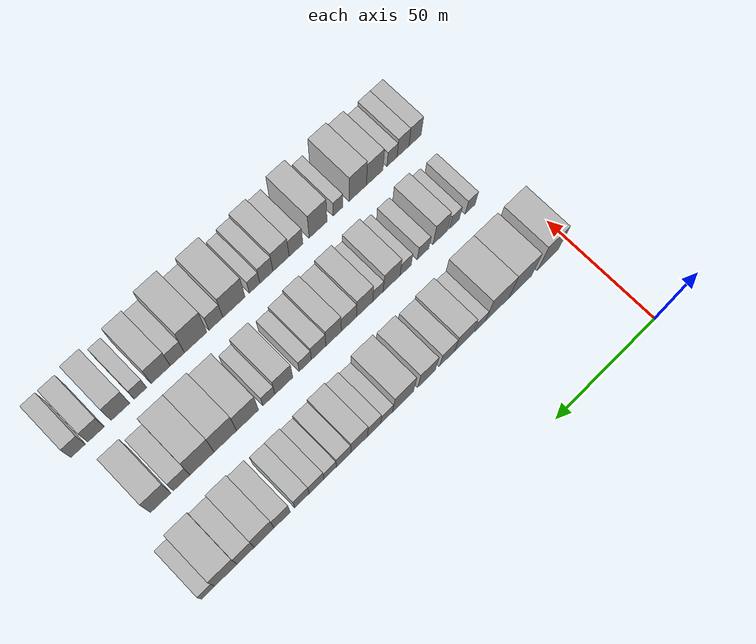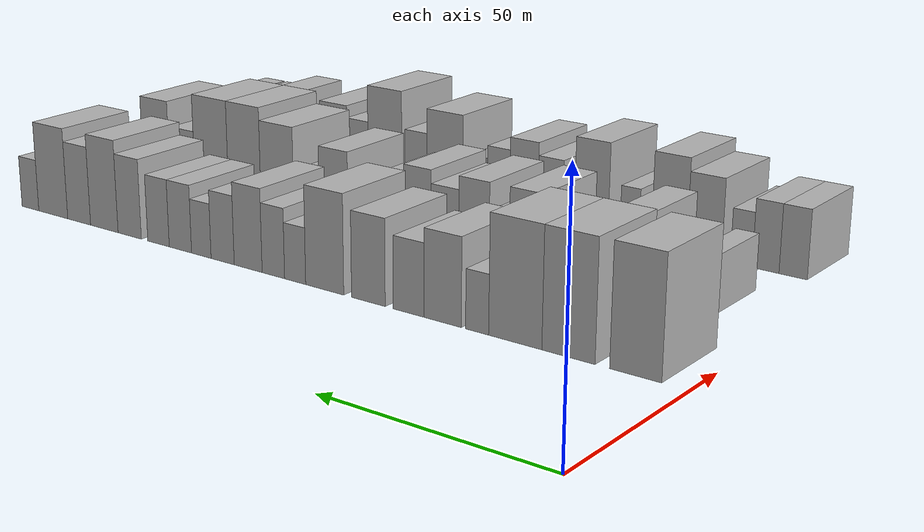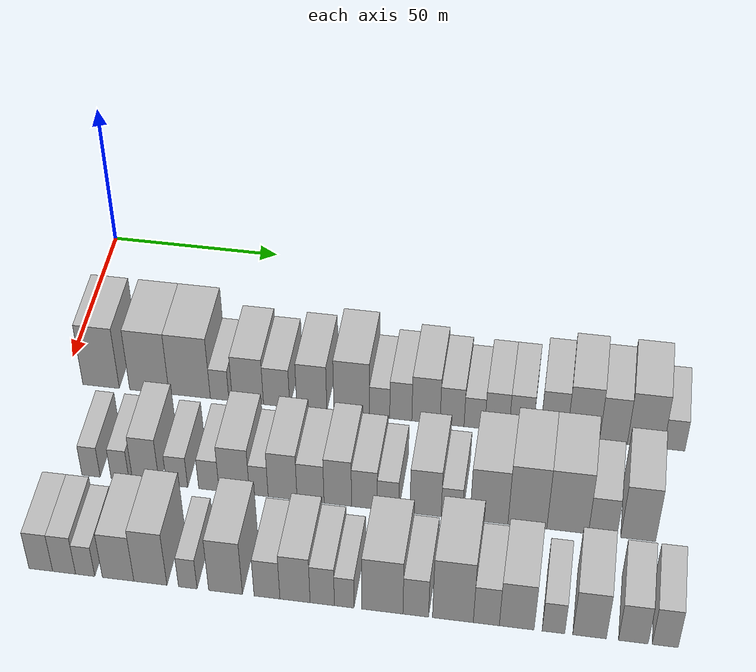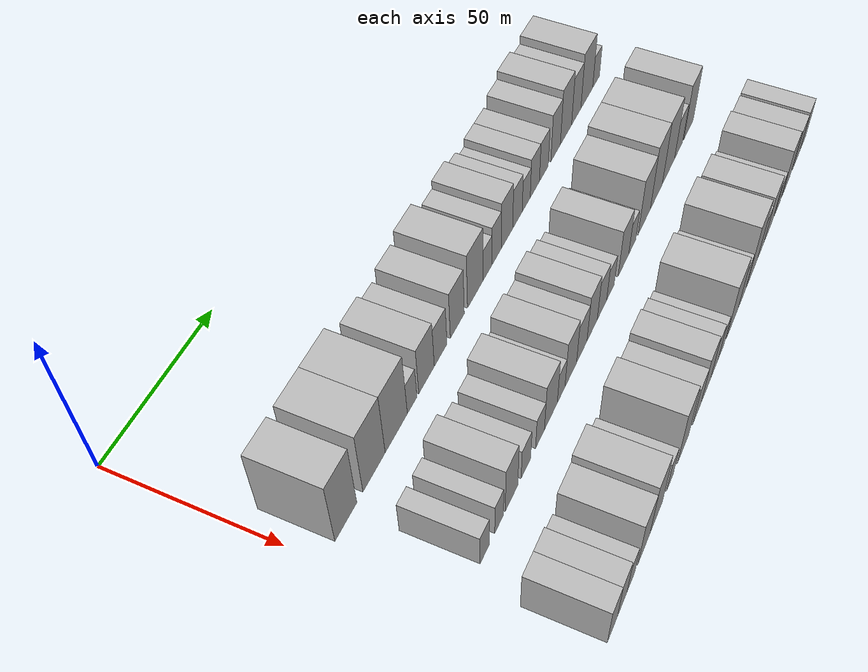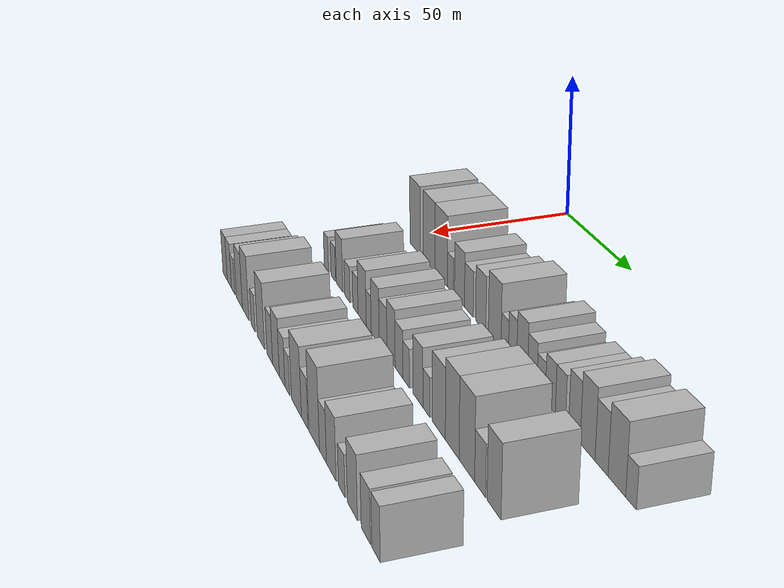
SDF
<sdf version="1.6">
 <world name="default">
  <model name="building_41">
   <static>1</static>
   <pose>50.0000 10.7805 0 0.000000 0.000000 0.000000</pose>
   <link name="link">
    <pose>0 0 12.00 0 0 0</pose>
    <collision name="collision"><geometry><box><size>20.0000 10.5251 24.0000</size></box></geometry></collision>
    <visual name="visual">
     <cast_shadows>0</cast_shadows>
     <geometry><box><size>20.0000 10.5251 24.0000</size></box></geometry>
     <material>
      <script>
       <uri>model://HANNAS_wall/materials/scripts</uri>
       <uri>model://HANNAS_wall/materials/textures</uri>
       <name>vrc/HANNAS_wall</name>
      </script>
     </material>
    </visual>
   </link>
  </model>
  <model name="building_42">
   <static>1</static>
   <pose>50.0000 24.7000 0 0.000000 0.000000 0.000000</pose>
   <link name="link">
    <pose>0 0 12.00 0 0 0</pose>
    <collision name="collision"><geometry><box><size>20.0000 11.3139 24.0000</size></box></geometry></collision>
    <visual name="visual">
     <cast_shadows>0</cast_shadows>
     <geometry><box><size>20.0000 11.3139 24.0000</size></box></geometry>
     <material>
      <script>
       <uri>model://HANNAS_wall/materials/scripts</uri>
       <uri>model://HANNAS_wall/materials/textures</uri>
       <name>vrc/HANNAS_wall</name>
      </script>
     </material>
    </visual>
   </link>
  </model>
  <model name="building_43">
   <static>1</static>
   <pose>50.0000 36.2653 0 0.000000 0.000000 0.000000</pose>
   <link name="link">
    <pose>0 0 12.00 0 0 0</pose>
    <collision name="collision"><geometry><box><size>20.0000 11.8165 24.0000</size></box></geometry></collision>
    <visual name="visual">
     <cast_shadows>0</cast_shadows>
     <geometry><box><size>20.0000 11.8165 24.0000</size></box></geometry>
     <material>
      <script>
       <uri>model://HANNAS_wall/materials/scripts</uri>
       <uri>model://HANNAS_wall/materials/textures</uri>
       <name>vrc/HANNAS_wall</name>
      </script>
     </material>
    </visual>
   </link>
  </model>
  <model name="building_44">
   <static>1</static>
   <pose>50.0000 44.8143 0 0.000000 0.000000 0.000000</pose>
   <link name="link">
    <pose>0 0 6.00 0 0 0</pose>
    <collision name="collision"><geometry><box><size>20.0000 5.2817 12.0000</size></box></geometry></collision>
    <visual name="visual">
     <cast_shadows>0</cast_shadows>
     <geometry><box><size>20.0000 5.2817 12.0000</size></box></geometry>
     <material>
      <script>
       <uri>model://HANNAS_wall/materials/scripts</uri>
       <uri>model://HANNAS_wall/materials/textures</uri>
       <name>vrc/HANNAS_wall</name>
      </script>
     </material>
    </visual>
   </link>
  </model>
  <model name="building_45">
   <static>1</static>
   <pose>50.0000 52.8690 0 0.000000 0.000000 0.000000</pose>
   <link name="link">
    <pose>0 0 9.00 0 0 0</pose>
    <collision name="collision"><geometry><box><size>20.0000 8.8278 18.0000</size></box></geometry></collision>
    <visual name="visual">
     <cast_shadows>0</cast_shadows>
     <geometry><box><size>20.0000 8.8278 18.0000</size></box></geometry>
     <material>
      <script>
       <uri>model://HANNAS_wall/materials/scripts</uri>
       <uri>model://HANNAS_wall/materials/textures</uri>
       <name>vrc/HANNAS_wall</name>
      </script>
     </material>
    </visual>
   </link>
  </model>
  <model name="building_46">
   <static>1</static>
   <pose>50.0000 60.9933 0 0.000000 0.000000 0.000000</pose>
   <link name="link">
    <pose>0 0 7.50 0 0 0</pose>
    <collision name="collision"><geometry><box><size>20.0000 7.4207 15.0000</size></box></geometry></collision>
    <visual name="visual">
     <cast_shadows>0</cast_shadows>
     <geometry><box><size>20.0000 7.4207 15.0000</size></box></geometry>
     <material>
      <script>
       <uri>model://HANNAS_wall/materials/scripts</uri>
       <uri>model://HANNAS_wall/materials/textures</uri>
       <name>vrc/HANNAS_wall</name>
      </script>
     </material>
    </visual>
   </link>
  </model>
  <model name="building_47">
   <static>1</static>
   <pose>50.0000 70.9440 0 0.000000 0.000000 0.000000</pose>
   <link name="link">
    <pose>0 0 9.00 0 0 0</pose>
    <collision name="collision"><geometry><box><size>20.0000 8.4807 18.0000</size></box></geometry></collision>
    <visual name="visual">
     <cast_shadows>0</cast_shadows>
     <geometry><box><size>20.0000 8.4807 18.0000</size></box></geometry>
     <material>
      <script>
       <uri>model://HANNAS_wall/materials/scripts</uri>
       <uri>model://HANNAS_wall/materials/textures</uri>
       <name>vrc/HANNAS_wall</name>
      </script>
     </material>
    </visual>
   </link>
  </model>
  <model name="building_48">
   <static>1</static>
   <pose>50.0000 82.1688 0 0.000000 0.000000 0.000000</pose>
   <link name="link">
    <pose>0 0 10.50 0 0 0</pose>
    <collision name="collision"><geometry><box><size>20.0000 9.9690 21.0000</size></box></geometry></collision>
    <visual name="visual">
     <cast_shadows>0</cast_shadows>
     <geometry><box><size>20.0000 9.9690 21.0000</size></box></geometry>
     <material>
      <script>
       <uri>model://HANNAS_wall/materials/scripts</uri>
       <uri>model://HANNAS_wall/materials/textures</uri>
       <name>vrc/HANNAS_wall</name>
      </script>
     </material>
    </visual>
   </link>
  </model>
  <model name="building_49">
   <static>1</static>
   <pose>50.0000 89.9884 0 0.000000 0.000000 0.000000</pose>
   <link name="link">
    <pose>0 0 6.00 0 0 0</pose>
    <collision name="collision"><geometry><box><size>20.0000 5.6702 12.0000</size></box></geometry></collision>
    <visual name="visual">
     <cast_shadows>0</cast_shadows>
     <geometry><box><size>20.0000 5.6702 12.0000</size></box></geometry>
     <material>
      <script>
       <uri>model://HANNAS_wall/materials/scripts</uri>
       <uri>model://HANNAS_wall/materials/textures</uri>
       <name>vrc/HANNAS_wall</name>
      </script>
     </material>
    </visual>
   </link>
  </model>
  <model name="building_50">
   <static>1</static>
   <pose>50.0000 95.9091 0 0.000000 0.000000 0.000000</pose>
   <link name="link">
    <pose>0 0 7.50 0 0 0</pose>
    <collision name="collision"><geometry><box><size>20.0000 6.1710 15.0000</size></box></geometry></collision>
    <visual name="visual">
     <cast_shadows>0</cast_shadows>
     <geometry><box><size>20.0000 6.1710 15.0000</size></box></geometry>
     <material>
      <script>
       <uri>model://HANNAS_wall/materials/scripts</uri>
       <uri>model://HANNAS_wall/materials/textures</uri>
       <name>vrc/HANNAS_wall</name>
      </script>
     </material>
    </visual>
   </link>
  </model>
  <model name="building_51">
   <static>1</static>
   <pose>50.0000 102.9194 0 0.000000 0.000000 0.000000</pose>
   <link name="link">
    <pose>0 0 9.00 0 0 0</pose>
    <collision name="collision"><geometry><box><size>20.0000 7.8496 18.0000</size></box></geometry></collision>
    <visual name="visual">
     <cast_shadows>0</cast_shadows>
     <geometry><box><size>20.0000 7.8496 18.0000</size></box></geometry>
     <material>
      <script>
       <uri>model://HANNAS_wall/materials/scripts</uri>
       <uri>model://HANNAS_wall/materials/textures</uri>
       <name>vrc/HANNAS_wall</name>
      </script>
     </material>
    </visual>
   </link>
  </model>
  <model name="building_52">
   <static>1</static>
   <pose>50.0000 110.1753 0 0.000000 0.000000 0.000000</pose>
   <link name="link">
    <pose>0 0 7.50 0 0 0</pose>
    <collision name="collision"><geometry><box><size>20.0000 6.6623 15.0000</size></box></geometry></collision>
    <visual name="visual">
     <cast_shadows>0</cast_shadows>
     <geometry><box><size>20.0000 6.6623 15.0000</size></box></geometry>
     <material>
      <script>
       <uri>model://HANNAS_wall/materials/scripts</uri>
       <uri>model://HANNAS_wall/materials/textures</uri>
       <name>vrc/HANNAS_wall</name>
      </script>
     </material>
    </visual>
   </link>
  </model>
  <model name="building_53">
   <static>1</static>
   <pose>50.0000 116.3749 0 0.000000 0.000000 0.000000</pose>
   <link name="link">
    <pose>0 0 6.00 0 0 0</pose>
    <collision name="collision"><geometry><box><size>20.0000 5.7369 12.0000</size></box></geometry></collision>
    <visual name="visual">
     <cast_shadows>0</cast_shadows>
     <geometry><box><size>20.0000 5.7369 12.0000</size></box></geometry>
     <material>
      <script>
       <uri>model://HANNAS_wall/materials/scripts</uri>
       <uri>model://HANNAS_wall/materials/textures</uri>
       <name>vrc/HANNAS_wall</name>
      </script>
     </material>
    </visual>
   </link>
  </model>
  <model name="building_54">
   <static>1</static>
   <pose>50.0000 122.5907 0 0.000000 0.000000 0.000000</pose>
   <link name="link">
    <pose>0 0 7.50 0 0 0</pose>
    <collision name="collision"><geometry><box><size>20.0000 6.6947 15.0000</size></box></geometry></collision>
    <visual name="visual">
     <cast_shadows>0</cast_shadows>
     <geometry><box><size>20.0000 6.6947 15.0000</size></box></geometry>
     <material>
      <script>
       <uri>model://HANNAS_wall/materials/scripts</uri>
       <uri>model://HANNAS_wall/materials/textures</uri>
       <name>vrc/HANNAS_wall</name>
      </script>
     </material>
    </visual>
   </link>
  </model>
  <model name="building_55">
   <static>1</static>
   <pose>50.0000 129.2250 0 0.000000 0.000000 0.000000</pose>
   <link name="link">
    <pose>0 0 7.50 0 0 0</pose>
    <collision name="collision"><geometry><box><size>20.0000 6.5739 15.0000</size></box></geometry></collision>
    <visual name="visual">
     <cast_shadows>0</cast_shadows>
     <geometry><box><size>20.0000 6.5739 15.0000</size></box></geometry>
     <material>
      <script>
       <uri>model://HANNAS_wall/materials/scripts</uri>
       <uri>model://HANNAS_wall/materials/textures</uri>
       <name>vrc/HANNAS_wall</name>
      </script>
     </material>
    </visual>
   </link>
  </model>
  <model name="building_56">
   <static>1</static>
   <pose>50.0000 138.1787 0 0.000000 0.000000 0.000000</pose>
   <link name="link">
    <pose>0 0 9.00 0 0 0</pose>
    <collision name="collision"><geometry><box><size>20.0000 7.3336 18.0000</size></box></geometry></collision>
    <visual name="visual">
     <cast_shadows>0</cast_shadows>
     <geometry><box><size>20.0000 7.3336 18.0000</size></box></geometry>
     <material>
      <script>
       <uri>model://HANNAS_wall/materials/scripts</uri>
       <uri>model://HANNAS_wall/materials/textures</uri>
       <name>vrc/HANNAS_wall</name>
      </script>
     </material>
    </visual>
   </link>
  </model>
  <model name="building_57">
   <static>1</static>
   <pose>50.0000 146.2890 0 0.000000 0.000000 0.000000</pose>
   <link name="link">
    <pose>0 0 10.50 0 0 0</pose>
    <collision name="collision"><geometry><box><size>20.0000 8.8871 21.0000</size></box></geometry></collision>
    <visual name="visual">
     <cast_shadows>0</cast_shadows>
     <geometry><box><size>20.0000 8.8871 21.0000</size></box></geometry>
     <material>
      <script>
       <uri>model://HANNAS_wall/materials/scripts</uri>
       <uri>model://HANNAS_wall/materials/textures</uri>
       <name>vrc/HANNAS_wall</name>
      </script>
     </material>
    </visual>
   </link>
  </model>
  <model name="building_58">
   <static>1</static>
   <pose>50.0000 154.5236 0 0.000000 0.000000 0.000000</pose>
   <link name="link">
    <pose>0 0 9.00 0 0 0</pose>
    <collision name="collision"><geometry><box><size>20.0000 7.5820 18.0000</size></box></geometry></collision>
    <visual name="visual">
     <cast_shadows>0</cast_shadows>
     <geometry><box><size>20.0000 7.5820 18.0000</size></box></geometry>
     <material>
      <script>
       <uri>model://HANNAS_wall/materials/scripts</uri>
       <uri>model://HANNAS_wall/materials/textures</uri>
       <name>vrc/HANNAS_wall</name>
      </script>
     </material>
    </visual>
   </link>
  </model>
  <model name="building_59">
   <static>1</static>
   <pose>50.0000 163.2395 0 0.000000 0.000000 0.000000</pose>
   <link name="link">
    <pose>0 0 10.50 0 0 0</pose>
    <collision name="collision"><geometry><box><size>20.0000 9.8498 21.0000</size></box></geometry></collision>
    <visual name="visual">
     <cast_shadows>0</cast_shadows>
     <geometry><box><size>20.0000 9.8498 21.0000</size></box></geometry>
     <material>
      <script>
       <uri>model://HANNAS_wall/materials/scripts</uri>
       <uri>model://HANNAS_wall/materials/textures</uri>
       <name>vrc/HANNAS_wall</name>
      </script>
     </material>
    </visual>
   </link>
  </model>
  <model name="building_60">
   <static>1</static>
   <pose>50.0000 171.0696 0 0.000000 0.000000 0.000000</pose>
   <link name="link">
    <pose>0 0 6.00 0 0 0</pose>
    <collision name="collision"><geometry><box><size>20.0000 5.8104 12.0000</size></box></geometry></collision>
    <visual name="visual">
     <cast_shadows>0</cast_shadows>
     <geometry><box><size>20.0000 5.8104 12.0000</size></box></geometry>
     <material>
      <script>
       <uri>model://HANNAS_wall/materials/scripts</uri>
       <uri>model://HANNAS_wall/materials/textures</uri>
       <name>vrc/HANNAS_wall</name>
      </script>
     </material>
    </visual>
   </link>
  </model>
  <model name="building_124">
   <static>1</static>
   <pose>82.0000 16.2486 0 0.000000 0.000000 0.000000</pose>
   <link name="link">
    <pose>0 0 6.00 0 0 0</pose>
    <collision name="collision"><geometry><box><size>20.0000 5.0421 12.0000</size></box></geometry></collision>
    <visual name="visual">
     <cast_shadows>0</cast_shadows>
     <geometry><box><size>20.0000 5.0421 12.0000</size></box></geometry>
     <material>
      <script>
       <uri>model://HANNAS_wall/materials/scripts</uri>
       <uri>model://HANNAS_wall/materials/textures</uri>
       <name>vrc/HANNAS_wall</name>
      </script>
     </material>
    </visual>
   </link>
  </model>
  <model name="building_125">
   <static>1</static>
   <pose>82.0000 24.2443 0 0.000000 0.000000 0.000000</pose>
   <link name="link">
    <pose>0 0 6.00 0 0 0</pose>
    <collision name="collision"><geometry><box><size>20.0000 4.9494 12.0000</size></box></geometry></collision>
    <visual name="visual">
     <cast_shadows>0</cast_shadows>
     <geometry><box><size>20.0000 4.9494 12.0000</size></box></geometry>
     <material>
      <script>
       <uri>model://HANNAS_wall/materials/scripts</uri>
       <uri>model://HANNAS_wall/materials/textures</uri>
       <name>vrc/HANNAS_wall</name>
      </script>
     </material>
    </visual>
   </link>
  </model>
  <model name="building_126">
   <static>1</static>
   <pose>82.0000 31.3654 0 0.000000 0.000000 0.000000</pose>
   <link name="link">
    <pose>0 0 9.00 0 0 0</pose>
    <collision name="collision"><geometry><box><size>20.0000 7.2928 18.0000</size></box></geometry></collision>
    <visual name="visual">
     <cast_shadows>0</cast_shadows>
     <geometry><box><size>20.0000 7.2928 18.0000</size></box></geometry>
     <material>
      <script>
       <uri>model://HANNAS_wall/materials/scripts</uri>
       <uri>model://HANNAS_wall/materials/textures</uri>
       <name>vrc/HANNAS_wall</name>
      </script>
     </material>
    </visual>
   </link>
  </model>
  <model name="building_127">
   <static>1</static>
   <pose>82.0000 39.8989 0 0.000000 0.000000 0.000000</pose>
   <link name="link">
    <pose>0 0 6.00 0 0 0</pose>
    <collision name="collision"><geometry><box><size>20.0000 5.7742 12.0000</size></box></geometry></collision>
    <visual name="visual">
     <cast_shadows>0</cast_shadows>
     <geometry><box><size>20.0000 5.7742 12.0000</size></box></geometry>
     <material>
      <script>
       <uri>model://HANNAS_wall/materials/scripts</uri>
       <uri>model://HANNAS_wall/materials/textures</uri>
       <name>vrc/HANNAS_wall</name>
      </script>
     </material>
    </visual>
   </link>
  </model>
  <model name="building_128">
   <static>1</static>
   <pose>82.0000 48.5575 0 0.000000 0.000000 0.000000</pose>
   <link name="link">
    <pose>0 0 6.00 0 0 0</pose>
    <collision name="collision"><geometry><box><size>20.0000 5.5428 12.0000</size></box></geometry></collision>
    <visual name="visual">
     <cast_shadows>0</cast_shadows>
     <geometry><box><size>20.0000 5.5428 12.0000</size></box></geometry>
     <material>
      <script>
       <uri>model://HANNAS_wall/materials/scripts</uri>
       <uri>model://HANNAS_wall/materials/textures</uri>
       <name>vrc/HANNAS_wall</name>
      </script>
     </material>
    </visual>
   </link>
  </model>
  <model name="building_129">
   <static>1</static>
   <pose>82.0000 55.4622 0 0.000000 0.000000 0.000000</pose>
   <link name="link">
    <pose>0 0 9.00 0 0 0</pose>
    <collision name="collision"><geometry><box><size>20.0000 8.2667 18.0000</size></box></geometry></collision>
    <visual name="visual">
     <cast_shadows>0</cast_shadows>
     <geometry><box><size>20.0000 8.2667 18.0000</size></box></geometry>
     <material>
      <script>
       <uri>model://HANNAS_wall/materials/scripts</uri>
       <uri>model://HANNAS_wall/materials/textures</uri>
       <name>vrc/HANNAS_wall</name>
      </script>
     </material>
    </visual>
   </link>
  </model>
  <model name="building_130">
   <static>1</static>
   <pose>82.0000 62.1192 0 0.000000 0.000000 0.000000</pose>
   <link name="link">
    <pose>0 0 6.00 0 0 0</pose>
    <collision name="collision"><geometry><box><size>20.0000 5.0472 12.0000</size></box></geometry></collision>
    <visual name="visual">
     <cast_shadows>0</cast_shadows>
     <geometry><box><size>20.0000 5.0472 12.0000</size></box></geometry>
     <material>
      <script>
       <uri>model://HANNAS_wall/materials/scripts</uri>
       <uri>model://HANNAS_wall/materials/textures</uri>
       <name>vrc/HANNAS_wall</name>
      </script>
     </material>
    </visual>
   </link>
  </model>
  <model name="building_131">
   <static>1</static>
   <pose>82.0000 68.5437 0 0.000000 0.000000 0.000000</pose>
   <link name="link">
    <pose>0 0 9.00 0 0 0</pose>
    <collision name="collision"><geometry><box><size>20.0000 7.8018 18.0000</size></box></geometry></collision>
    <visual name="visual">
     <cast_shadows>0</cast_shadows>
     <geometry><box><size>20.0000 7.8018 18.0000</size></box></geometry>
     <material>
      <script>
       <uri>model://HANNAS_wall/materials/scripts</uri>
       <uri>model://HANNAS_wall/materials/textures</uri>
       <name>vrc/HANNAS_wall</name>
      </script>
     </material>
    </visual>
   </link>
  </model>
  <model name="building_132">
   <static>1</static>
   <pose>82.0000 76.0768 0 0.000000 0.000000 0.000000</pose>
   <link name="link">
    <pose>0 0 7.50 0 0 0</pose>
    <collision name="collision"><geometry><box><size>20.0000 7.2645 15.0000</size></box></geometry></collision>
    <visual name="visual">
     <cast_shadows>0</cast_shadows>
     <geometry><box><size>20.0000 7.2645 15.0000</size></box></geometry>
     <material>
      <script>
       <uri>model://HANNAS_wall/materials/scripts</uri>
       <uri>model://HANNAS_wall/materials/textures</uri>
       <name>vrc/HANNAS_wall</name>
      </script>
     </material>
    </visual>
   </link>
  </model>
  <model name="building_133">
   <static>1</static>
   <pose>82.0000 83.4015 0 0.000000 0.000000 0.000000</pose>
   <link name="link">
    <pose>0 0 9.00 0 0 0</pose>
    <collision name="collision"><geometry><box><size>20.0000 7.3848 18.0000</size></box></geometry></collision>
    <visual name="visual">
     <cast_shadows>0</cast_shadows>
     <geometry><box><size>20.0000 7.3848 18.0000</size></box></geometry>
     <material>
      <script>
       <uri>model://HANNAS_wall/materials/scripts</uri>
       <uri>model://HANNAS_wall/materials/textures</uri>
       <name>vrc/HANNAS_wall</name>
      </script>
     </material>
    </visual>
   </link>
  </model>
  <model name="building_134">
   <static>1</static>
   <pose>82.0000 90.5304 0 0.000000 0.000000 0.000000</pose>
   <link name="link">
    <pose>0 0 7.50 0 0 0</pose>
    <collision name="collision"><geometry><box><size>20.0000 6.8730 15.0000</size></box></geometry></collision>
    <visual name="visual">
     <cast_shadows>0</cast_shadows>
     <geometry><box><size>20.0000 6.8730 15.0000</size></box></geometry>
     <material>
      <script>
       <uri>model://HANNAS_wall/materials/scripts</uri>
       <uri>model://HANNAS_wall/materials/textures</uri>
       <name>vrc/HANNAS_wall</name>
      </script>
     </material>
    </visual>
   </link>
  </model>
  <model name="building_135">
   <static>1</static>
   <pose>82.0000 96.8142 0 0.000000 0.000000 0.000000</pose>
   <link name="link">
    <pose>0 0 6.00 0 0 0</pose>
    <collision name="collision"><geometry><box><size>20.0000 5.6945 12.0000</size></box></geometry></collision>
    <visual name="visual">
     <cast_shadows>0</cast_shadows>
     <geometry><box><size>20.0000 5.6945 12.0000</size></box></geometry>
     <material>
      <script>
       <uri>model://HANNAS_wall/materials/scripts</uri>
       <uri>model://HANNAS_wall/materials/textures</uri>
       <name>vrc/HANNAS_wall</name>
      </script>
     </material>
    </visual>
   </link>
  </model>
  <model name="building_136">
   <static>1</static>
   <pose>82.0000 106.8059 0 0.000000 0.000000 0.000000</pose>
   <link name="link">
    <pose>0 0 9.00 0 0 0</pose>
    <collision name="collision"><geometry><box><size>20.0000 8.2890 18.0000</size></box></geometry></collision>
    <visual name="visual">
     <cast_shadows>0</cast_shadows>
     <geometry><box><size>20.0000 8.2890 18.0000</size></box></geometry>
     <material>
      <script>
       <uri>model://HANNAS_wall/materials/scripts</uri>
       <uri>model://HANNAS_wall/materials/textures</uri>
       <name>vrc/HANNAS_wall</name>
      </script>
     </material>
    </visual>
   </link>
  </model>
  <model name="building_137">
   <static>1</static>
   <pose>82.0000 113.7559 0 0.000000 0.000000 0.000000</pose>
   <link name="link">
    <pose>0 0 6.00 0 0 0</pose>
    <collision name="collision"><geometry><box><size>20.0000 5.6109 12.0000</size></box></geometry></collision>
    <visual name="visual">
     <cast_shadows>0</cast_shadows>
     <geometry><box><size>20.0000 5.6109 12.0000</size></box></geometry>
     <material>
      <script>
       <uri>model://HANNAS_wall/materials/scripts</uri>
       <uri>model://HANNAS_wall/materials/textures</uri>
       <name>vrc/HANNAS_wall</name>
      </script>
     </material>
    </visual>
   </link>
  </model>
  <model name="building_138">
   <static>1</static>
   <pose>82.0000 123.5837 0 0.000000 0.000000 0.000000</pose>
   <link name="link">
    <pose>0 0 10.50 0 0 0</pose>
    <collision name="collision"><geometry><box><size>20.0000 10.0447 21.0000</size></box></geometry></collision>
    <visual name="visual">
     <cast_shadows>0</cast_shadows>
     <geometry><box><size>20.0000 10.0447 21.0000</size></box></geometry>
     <material>
      <script>
       <uri>model://HANNAS_wall/materials/scripts</uri>
       <uri>model://HANNAS_wall/materials/textures</uri>
       <name>vrc/HANNAS_wall</name>
      </script>
     </material>
    </visual>
   </link>
  </model>
  <model name="building_139">
   <static>1</static>
   <pose>82.0000 133.7031 0 0.000000 0.000000 0.000000</pose>
   <link name="link">
    <pose>0 0 12.00 0 0 0</pose>
    <collision name="collision"><geometry><box><size>20.0000 10.1940 24.0000</size></box></geometry></collision>
    <visual name="visual">
     <cast_shadows>0</cast_shadows>
     <geometry><box><size>20.0000 10.1940 24.0000</size></box></geometry>
     <material>
      <script>
       <uri>model://HANNAS_wall/materials/scripts</uri>
       <uri>model://HANNAS_wall/materials/textures</uri>
       <name>vrc/HANNAS_wall</name>
      </script>
     </material>
    </visual>
   </link>
  </model>
  <model name="building_140">
   <static>1</static>
   <pose>82.0000 144.2493 0 0.000000 0.000000 0.000000</pose>
   <link name="link">
    <pose>0 0 12.00 0 0 0</pose>
    <collision name="collision"><geometry><box><size>20.0000 10.8985 24.0000</size></box></geometry></collision>
    <visual name="visual">
     <cast_shadows>0</cast_shadows>
     <geometry><box><size>20.0000 10.8985 24.0000</size></box></geometry>
     <material>
      <script>
       <uri>model://HANNAS_wall/materials/scripts</uri>
       <uri>model://HANNAS_wall/materials/textures</uri>
       <name>vrc/HANNAS_wall</name>
      </script>
     </material>
    </visual>
   </link>
  </model>
  <model name="building_141">
   <static>1</static>
   <pose>82.0000 153.3906 0 0.000000 0.000000 0.000000</pose>
   <link name="link">
    <pose>0 0 7.50 0 0 0</pose>
    <collision name="collision"><geometry><box><size>20.0000 7.3841 15.0000</size></box></geometry></collision>
    <visual name="visual">
     <cast_shadows>0</cast_shadows>
     <geometry><box><size>20.0000 7.3841 15.0000</size></box></geometry>
     <material>
      <script>
       <uri>model://HANNAS_wall/materials/scripts</uri>
       <uri>model://HANNAS_wall/materials/textures</uri>
       <name>vrc/HANNAS_wall</name>
      </script>
     </material>
    </visual>
   </link>
  </model>
  <model name="building_142">
   <static>1</static>
   <pose>82.0000 162.6246 0 0.000000 0.000000 0.000000</pose>
   <link name="link">
    <pose>0 0 10.50 0 0 0</pose>
    <collision name="collision"><geometry><box><size>20.0000 9.0839 21.0000</size></box></geometry></collision>
    <visual name="visual">
     <cast_shadows>0</cast_shadows>
     <geometry><box><size>20.0000 9.0839 21.0000</size></box></geometry>
     <material>
      <script>
       <uri>model://HANNAS_wall/materials/scripts</uri>
       <uri>model://HANNAS_wall/materials/textures</uri>
       <name>vrc/HANNAS_wall</name>
      </script>
     </material>
    </visual>
   </link>
  </model>
  <model name="building_200">
   <static>1</static>
   <pose>114.0000 11.3408 0 0.000000 0.000000 0.000000</pose>
   <link name="link">
    <pose>0 0 7.50 0 0 0</pose>
    <collision name="collision"><geometry><box><size>20.0000 6.2617 15.0000</size></box></geometry></collision>
    <visual name="visual">
     <cast_shadows>0</cast_shadows>
     <geometry><box><size>20.0000 6.2617 15.0000</size></box></geometry>
     <material>
      <script>
       <uri>model://HANNAS_wall/materials/scripts</uri>
       <uri>model://HANNAS_wall/materials/textures</uri>
       <name>vrc/HANNAS_wall</name>
      </script>
     </material>
    </visual>
   </link>
  </model>
  <model name="building_201">
   <static>1</static>
   <pose>114.0000 17.4911 0 0.000000 0.000000 0.000000</pose>
   <link name="link">
    <pose>0 0 7.50 0 0 0</pose>
    <collision name="collision"><geometry><box><size>20.0000 6.0389 15.0000</size></box></geometry></collision>
    <visual name="visual">
     <cast_shadows>0</cast_shadows>
     <geometry><box><size>20.0000 6.0389 15.0000</size></box></geometry>
     <material>
      <script>
       <uri>model://HANNAS_wall/materials/scripts</uri>
       <uri>model://HANNAS_wall/materials/textures</uri>
       <name>vrc/HANNAS_wall</name>
      </script>
     </material>
    </visual>
   </link>
  </model>
  <model name="building_202">
   <static>1</static>
   <pose>114.0000 23.0313 0 0.000000 0.000000 0.000000</pose>
   <link name="link">
    <pose>0 0 6.00 0 0 0</pose>
    <collision name="collision"><geometry><box><size>20.0000 5.0417 12.0000</size></box></geometry></collision>
    <visual name="visual">
     <cast_shadows>0</cast_shadows>
     <geometry><box><size>20.0000 5.0417 12.0000</size></box></geometry>
     <material>
      <script>
       <uri>model://HANNAS_wall/materials/scripts</uri>
       <uri>model://HANNAS_wall/materials/textures</uri>
       <name>vrc/HANNAS_wall</name>
      </script>
     </material>
    </visual>
   </link>
  </model>
  <model name="building_203">
   <static>1</static>
   <pose>114.0000 31.6818 0 0.000000 0.000000 0.000000</pose>
   <link name="link">
    <pose>0 0 9.00 0 0 0</pose>
    <collision name="collision"><geometry><box><size>20.0000 8.2593 18.0000</size></box></geometry></collision>
    <visual name="visual">
     <cast_shadows>0</cast_shadows>
     <geometry><box><size>20.0000 8.2593 18.0000</size></box></geometry>
     <material>
      <script>
       <uri>model://HANNAS_wall/materials/scripts</uri>
       <uri>model://HANNAS_wall/materials/textures</uri>
       <name>vrc/HANNAS_wall</name>
      </script>
     </material>
    </visual>
   </link>
  </model>
  <model name="building_204">
   <static>1</static>
   <pose>114.0000 40.1330 0 0.000000 0.000000 0.000000</pose>
   <link name="link">
    <pose>0 0 10.50 0 0 0</pose>
    <collision name="collision"><geometry><box><size>20.0000 8.6431 21.0000</size></box></geometry></collision>
    <visual name="visual">
     <cast_shadows>0</cast_shadows>
     <geometry><box><size>20.0000 8.6431 21.0000</size></box></geometry>
     <material>
      <script>
       <uri>model://HANNAS_wall/materials/scripts</uri>
       <uri>model://HANNAS_wall/materials/textures</uri>
       <name>vrc/HANNAS_wall</name>
      </script>
     </material>
    </visual>
   </link>
  </model>
  <model name="building_205">
   <static>1</static>
   <pose>114.0000 49.8722 0 0.000000 0.000000 0.000000</pose>
   <link name="link">
    <pose>0 0 6.00 0 0 0</pose>
    <collision name="collision"><geometry><box><size>20.0000 4.8351 12.0000</size></box></geometry></collision>
    <visual name="visual">
     <cast_shadows>0</cast_shadows>
     <geometry><box><size>20.0000 4.8351 12.0000</size></box></geometry>
     <material>
      <script>
       <uri>model://HANNAS_wall/materials/scripts</uri>
       <uri>model://HANNAS_wall/materials/textures</uri>
       <name>vrc/HANNAS_wall</name>
      </script>
     </material>
    </visual>
   </link>
  </model>
  <model name="building_206">
   <static>1</static>
   <pose>114.0000 59.6659 0 0.000000 0.000000 0.000000</pose>
   <link name="link">
    <pose>0 0 10.50 0 0 0</pose>
    <collision name="collision"><geometry><box><size>20.0000 8.7523 21.0000</size></box></geometry></collision>
    <visual name="visual">
     <cast_shadows>0</cast_shadows>
     <geometry><box><size>20.0000 8.7523 21.0000</size></box></geometry>
     <material>
      <script>
       <uri>model://HANNAS_wall/materials/scripts</uri>
       <uri>model://HANNAS_wall/materials/textures</uri>
       <name>vrc/HANNAS_wall</name>
      </script>
     </material>
    </visual>
   </link>
  </model>
  <model name="building_207">
   <static>1</static>
   <pose>114.0000 70.3696 0 0.000000 0.000000 0.000000</pose>
   <link name="link">
    <pose>0 0 7.50 0 0 0</pose>
    <collision name="collision"><geometry><box><size>20.0000 6.6551 15.0000</size></box></geometry></collision>
    <visual name="visual">
     <cast_shadows>0</cast_shadows>
     <geometry><box><size>20.0000 6.6551 15.0000</size></box></geometry>
     <material>
      <script>
       <uri>model://HANNAS_wall/materials/scripts</uri>
       <uri>model://HANNAS_wall/materials/textures</uri>
       <name>vrc/HANNAS_wall</name>
      </script>
     </material>
    </visual>
   </link>
  </model>
  <model name="building_208">
   <static>1</static>
   <pose>114.0000 77.5709 0 0.000000 0.000000 0.000000</pose>
   <link name="link">
    <pose>0 0 9.00 0 0 0</pose>
    <collision name="collision"><geometry><box><size>20.0000 7.7475 18.0000</size></box></geometry></collision>
    <visual name="visual">
     <cast_shadows>0</cast_shadows>
     <geometry><box><size>20.0000 7.7475 18.0000</size></box></geometry>
     <material>
      <script>
       <uri>model://HANNAS_wall/materials/scripts</uri>
       <uri>model://HANNAS_wall/materials/textures</uri>
       <name>vrc/HANNAS_wall</name>
      </script>
     </material>
    </visual>
   </link>
  </model>
  <model name="building_209">
   <static>1</static>
   <pose>114.0000 84.5567 0 0.000000 0.000000 0.000000</pose>
   <link name="link">
    <pose>0 0 7.50 0 0 0</pose>
    <collision name="collision"><geometry><box><size>20.0000 6.2241 15.0000</size></box></geometry></collision>
    <visual name="visual">
     <cast_shadows>0</cast_shadows>
     <geometry><box><size>20.0000 6.2241 15.0000</size></box></geometry>
     <material>
      <script>
       <uri>model://HANNAS_wall/materials/scripts</uri>
       <uri>model://HANNAS_wall/materials/textures</uri>
       <name>vrc/HANNAS_wall</name>
      </script>
     </material>
    </visual>
   </link>
  </model>
  <model name="building_210">
   <static>1</static>
   <pose>114.0000 90.1675 0 0.000000 0.000000 0.000000</pose>
   <link name="link">
    <pose>0 0 6.00 0 0 0</pose>
    <collision name="collision"><geometry><box><size>20.0000 4.9975 12.0000</size></box></geometry></collision>
    <visual name="visual">
     <cast_shadows>0</cast_shadows>
     <geometry><box><size>20.0000 4.9975 12.0000</size></box></geometry>
     <material>
      <script>
       <uri>model://HANNAS_wall/materials/scripts</uri>
       <uri>model://HANNAS_wall/materials/textures</uri>
       <name>vrc/HANNAS_wall</name>
      </script>
     </material>
    </visual>
   </link>
  </model>
  <model name="building_211">
   <static>1</static>
   <pose>114.0000 99.8872 0 0.000000 0.000000 0.000000</pose>
   <link name="link">
    <pose>0 0 10.50 0 0 0</pose>
    <collision name="collision"><geometry><box><size>20.0000 10.4419 21.0000</size></box></geometry></collision>
    <visual name="visual">
     <cast_shadows>0</cast_shadows>
     <geometry><box><size>20.0000 10.4419 21.0000</size></box></geometry>
     <material>
      <script>
       <uri>model://HANNAS_wall/materials/scripts</uri>
       <uri>model://HANNAS_wall/materials/textures</uri>
       <name>vrc/HANNAS_wall</name>
      </script>
     </material>
    </visual>
   </link>
  </model>
  <model name="building_212">
   <static>1</static>
   <pose>114.0000 108.3431 0 0.000000 0.000000 0.000000</pose>
   <link name="link">
    <pose>0 0 7.50 0 0 0</pose>
    <collision name="collision"><geometry><box><size>20.0000 6.4699 15.0000</size></box></geometry></collision>
    <visual name="visual">
     <cast_shadows>0</cast_shadows>
     <geometry><box><size>20.0000 6.4699 15.0000</size></box></geometry>
     <material>
      <script>
       <uri>model://HANNAS_wall/materials/scripts</uri>
       <uri>model://HANNAS_wall/materials/textures</uri>
       <name>vrc/HANNAS_wall</name>
      </script>
     </material>
    </visual>
   </link>
  </model>
  <model name="building_213">
   <static>1</static>
   <pose>114.0000 117.7285 0 0.000000 0.000000 0.000000</pose>
   <link name="link">
    <pose>0 0 12.00 0 0 0</pose>
    <collision name="collision"><geometry><box><size>20.0000 10.3007 24.0000</size></box></geometry></collision>
    <visual name="visual">
     <cast_shadows>0</cast_shadows>
     <geometry><box><size>20.0000 10.3007 24.0000</size></box></geometry>
     <material>
      <script>
       <uri>model://HANNAS_wall/materials/scripts</uri>
       <uri>model://HANNAS_wall/materials/textures</uri>
       <name>vrc/HANNAS_wall</name>
      </script>
     </material>
    </visual>
   </link>
  </model>
  <model name="building_214">
   <static>1</static>
   <pose>114.0000 126.1480 0 0.000000 0.000000 0.000000</pose>
   <link name="link">
    <pose>0 0 7.50 0 0 0</pose>
    <collision name="collision"><geometry><box><size>20.0000 6.5384 15.0000</size></box></geometry></collision>
    <visual name="visual">
     <cast_shadows>0</cast_shadows>
     <geometry><box><size>20.0000 6.5384 15.0000</size></box></geometry>
     <material>
      <script>
       <uri>model://HANNAS_wall/materials/scripts</uri>
       <uri>model://HANNAS_wall/materials/textures</uri>
       <name>vrc/HANNAS_wall</name>
      </script>
     </material>
    </visual>
   </link>
  </model>
  <model name="building_215">
   <static>1</static>
   <pose>114.0000 133.7658 0 0.000000 0.000000 0.000000</pose>
   <link name="link">
    <pose>0 0 9.00 0 0 0</pose>
    <collision name="collision"><geometry><box><size>20.0000 8.6971 18.0000</size></box></geometry></collision>
    <visual name="visual">
     <cast_shadows>0</cast_shadows>
     <geometry><box><size>20.0000 8.6971 18.0000</size></box></geometry>
     <material>
      <script>
       <uri>model://HANNAS_wall/materials/scripts</uri>
       <uri>model://HANNAS_wall/materials/textures</uri>
       <name>vrc/HANNAS_wall</name>
      </script>
     </material>
    </visual>
   </link>
  </model>
  <model name="building_216">
   <static>1</static>
   <pose>114.0000 142.9366 0 0.000000 0.000000 0.000000</pose>
   <link name="link">
    <pose>0 0 6.00 0 0 0</pose>
    <collision name="collision"><geometry><box><size>20.0000 5.6445 12.0000</size></box></geometry></collision>
    <visual name="visual">
     <cast_shadows>0</cast_shadows>
     <geometry><box><size>20.0000 5.6445 12.0000</size></box></geometry>
     <material>
      <script>
       <uri>model://HANNAS_wall/materials/scripts</uri>
       <uri>model://HANNAS_wall/materials/textures</uri>
       <name>vrc/HANNAS_wall</name>
      </script>
     </material>
    </visual>
   </link>
  </model>
  <model name="building_217">
   <static>1</static>
   <pose>114.0000 151.9348 0 0.000000 0.000000 0.000000</pose>
   <link name="link">
    <pose>0 0 9.00 0 0 0</pose>
    <collision name="collision"><geometry><box><size>20.0000 8.3520 18.0000</size></box></geometry></collision>
    <visual name="visual">
     <cast_shadows>0</cast_shadows>
     <geometry><box><size>20.0000 8.3520 18.0000</size></box></geometry>
     <material>
      <script>
       <uri>model://HANNAS_wall/materials/scripts</uri>
       <uri>model://HANNAS_wall/materials/textures</uri>
       <name>vrc/HANNAS_wall</name>
      </script>
     </material>
    </visual>
   </link>
  </model>
  <model name="building_218">
   <static>1</static>
   <pose>114.0000 162.7733 0 0.000000 0.000000 0.000000</pose>
   <link name="link">
    <pose>0 0 7.50 0 0 0</pose>
    <collision name="collision"><geometry><box><size>20.0000 7.3251 15.0000</size></box></geometry></collision>
    <visual name="visual">
     <cast_shadows>0</cast_shadows>
     <geometry><box><size>20.0000 7.3251 15.0000</size></box></geometry>
     <material>
      <script>
       <uri>model://HANNAS_wall/materials/scripts</uri>
       <uri>model://HANNAS_wall/materials/textures</uri>
       <name>vrc/HANNAS_wall</name>
      </script>
     </material>
    </visual>
   </link>
  </model>
  <model name="building_219">
   <static>1</static>
   <pose>114.0000 170.6364 0 0.000000 0.000000 0.000000</pose>
   <link name="link">
    <pose>0 0 7.50 0 0 0</pose>
    <collision name="collision"><geometry><box><size>20.0000 6.4011 15.0000</size></box></geometry></collision>
    <visual name="visual">
     <cast_shadows>0</cast_shadows>
     <geometry><box><size>20.0000 6.4011 15.0000</size></box></geometry>
     <material>
      <script>
       <uri>model://HANNAS_wall/materials/scripts</uri>
       <uri>model://HANNAS_wall/materials/textures</uri>
       <name>vrc/HANNAS_wall</name>
      </script>
     </material>
    </visual>
   </link>
  </model>
 </world>
</sdf>
